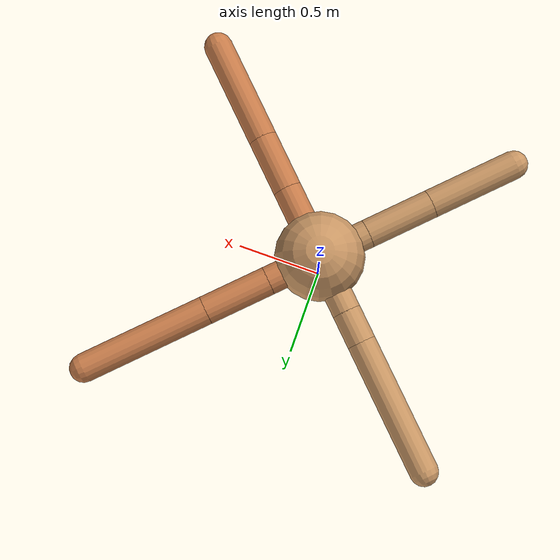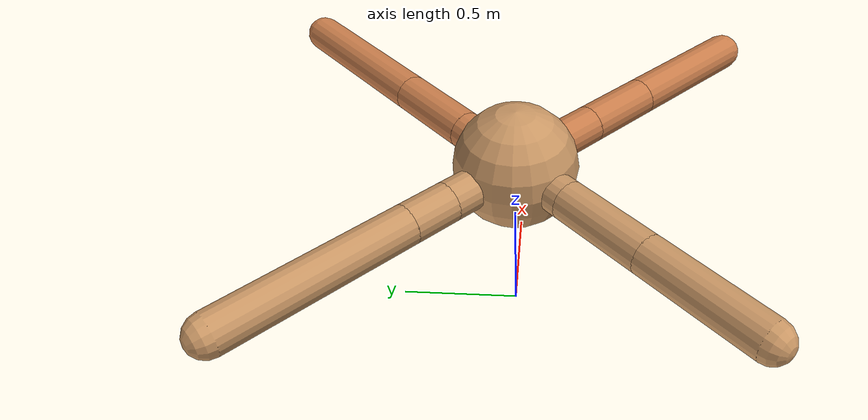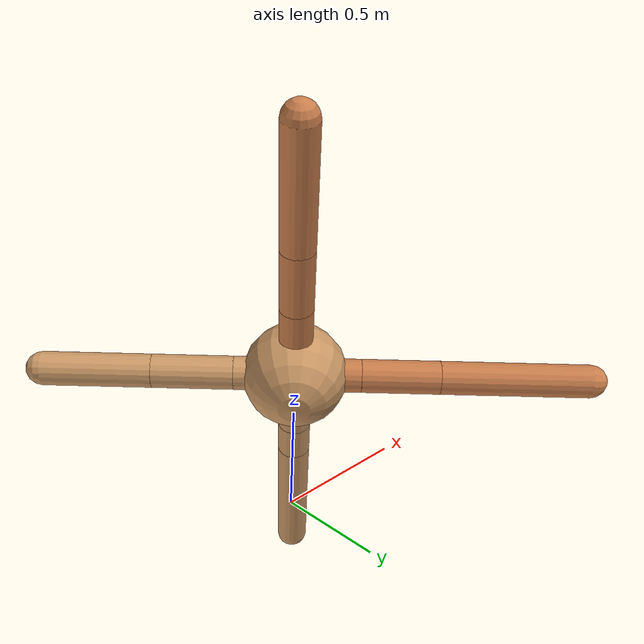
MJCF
<mujoco model="ant">
  <compiler angle="degree" coordinate="local" inertiafromgeom="true" />
  <option integrator="RK4" timestep="0.01" />
  <custom>
    <numeric data="0.0 0.0 0.55 1.0 0.0 0.0 0.0 0.0 1.0 0.0 -1.0 0.0 -1.0 0.0 1.0" name="init_qpos" />
  </custom>
  <default>
    <joint armature="1" damping="1" limited="true" />
    <geom conaffinity="0" condim="3" density="5.0" friction="1.5 0.1 0.1" margin="0.01" rgba="0.8 0.6 0.4 1" />
  </default>
  <worldbody>
    <body name="torso" pos="0 0 0.75">
      <geom name="torso_geom" pos="0 0 0" size="0.25" type="sphere" />

      <body name="front_left_leg" pos="0 0 0">
        <geom fromto="0.0 0.0 0.0 0.22168248834424237 0.22168248834424237 0.0" name="aux_1_geom" size="0.08" type="capsule" rgba=".8 .5 .3 1" />
        <body name="aux_1" pos="0.22168248834424237 0.22168248834424237 0.0">
          <joint axis="0 0 1" name="hip_1" pos="0.0 0.0 0.0" range="-40 40" type="hinge" />
          <geom fromto="0.0 0.0 0.0 0.26593780390723293 0.26593780390723293 0.0" name="left_leg_geom" size="0.08" type="capsule" rgba=".8 .5 .3 1" />
          <body pos="0.26593780390723293 0.26593780390723293 0.0" name="front_left_foot">
            <joint axis="-1 1 0" name="ankle_1" pos="0.0 0.0 0.0" range="30 100" type="hinge" />
            <geom fromto="0.0 0.0 0.0 0.5133758984400543 0.5133758984400543 0.0" name="left_ankle_geom" size="0.08" type="capsule" rgba=".8 .5 .3 1" />
          </body>
        </body>
      </body>
      <body name="front_right_leg" pos="0 0 0">
        <geom fromto="0.0 0.0 0.0 -0.23878938262909177 0.23878938262909177 0.0" name="aux_2_geom" size="0.08" type="capsule" />
        <body name="aux_2" pos="-0.23878938262909177 0.23878938262909177 0.0">
          <joint axis="0 0 1" name="hip_2" pos="0.0 0.0 0.0" range="-40 40" type="hinge" />
          <geom fromto="0.0 0.0 0.0 -0.13159239912390738 0.13159239912390738 0.0" name="right_leg_geom" size="0.08" type="capsule" />
          <body pos="-0.13159239912390738 0.13159239912390738 0.0" name="front_right_foot">
            <joint axis="1 1 0" name="ankle_2" pos="0.0 0.0 0.0" range="-100 -30" type="hinge" />
            <geom fromto="0.0 0.0 0.0 -0.5419449466435624 0.5419449466435624 0.0" name="right_ankle_geom" size="0.08" type="capsule" />
          </body>
        </body>
      </body>
      <body name="left_back_leg" pos="0 0 0">
        <geom fromto="0.0 0.0 0.0 -0.20556865896371265 -0.20556865896371265 0.0" name="aux_3_geom" size="0.08" type="capsule" />
        <body name="aux_3" pos="-0.20556865896371265 -0.20556865896371265 0.0">
          <joint axis="0 0 1" name="hip_3" pos="0.0 0.0 0.0" range="-40 40" type="hinge" />
          <geom fromto="0.0 0.0 0.0 -0.2725419241208355 -0.2725419241208355 0.0" name="back_leg_geom" size="0.08" type="capsule" />
          <body pos="-0.2725419241208355 -0.2725419241208355 0.0" name="left_back_foot">
            <joint axis="-1 1 0" name="ankle_3" pos="0.0 0.0 0.0" range="-100 -30" type="hinge" />
            <geom fromto="0.0 0.0 0.0 -0.36242181944989016 -0.36242181944989016 0.0" name="third_ankle_geom" size="0.08" type="capsule" />
          </body>
        </body>
      </body>
      <body name="right_back_leg" pos="0 0 0">
        <geom fromto="0.0 0.0 0.0 0.2924596702856079 -0.2924596702856079 0.0" name="aux_4_geom" size="0.08" type="capsule" rgba=".8 .5 .3 1" />
        <body name="aux_4" pos="0.2924596702856079 -0.2924596702856079 0.0">
          <joint axis="0 0 1" name="hip_4" pos="0.0 0.0 0.0" range="-40 40" type="hinge" />
          <geom fromto="0.0 0.0 0.0 0.22368255791727681 -0.22368255791727681 0.0" name="rightback_leg_geom" size="0.08" type="capsule" rgba=".8 .5 .3 1" />
          <body pos="0.22368255791727681 -0.22368255791727681 0.0" name="right_back_foot">
            <joint axis="1 1 0" name="ankle_4" pos="0.0 0.0 0.0" range="30 100" type="hinge" />
            <geom fromto="0.0 0.0 0.0 0.41435459464801794 -0.41435459464801794 0.0" name="fourth_ankle_geom" size="0.08" type="capsule" rgba=".8 .5 .3 1" />
          </body>
        </body>
      </body>
    </body>
  </worldbody>
  <actuator>
    <motor ctrllimited="true" ctrlrange="-1.0 1.0" joint="hip_4" gear="150" />
    <motor ctrllimited="true" ctrlrange="-1.0 1.0" joint="ankle_4" gear="150" />
    <motor ctrllimited="true" ctrlrange="-1.0 1.0" joint="hip_1" gear="150" />
    <motor ctrllimited="true" ctrlrange="-1.0 1.0" joint="ankle_1" gear="150" />
    <motor ctrllimited="true" ctrlrange="-1.0 1.0" joint="hip_2" gear="150" />
    <motor ctrllimited="true" ctrlrange="-1.0 1.0" joint="ankle_2" gear="150" />
    <motor ctrllimited="true" ctrlrange="-1.0 1.0" joint="hip_3" gear="150" />
    <motor ctrllimited="true" ctrlrange="-1.0 1.0" joint="ankle_3" gear="150" />
  </actuator>
</mujoco>
